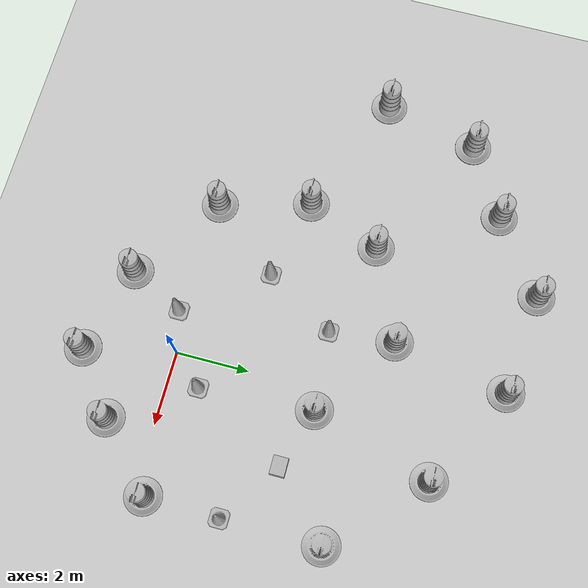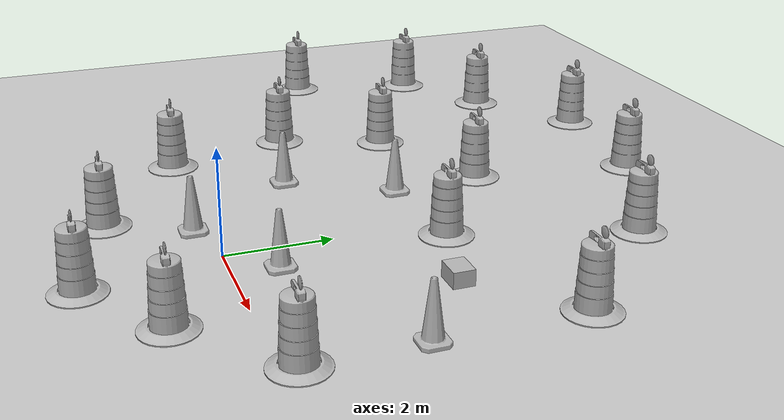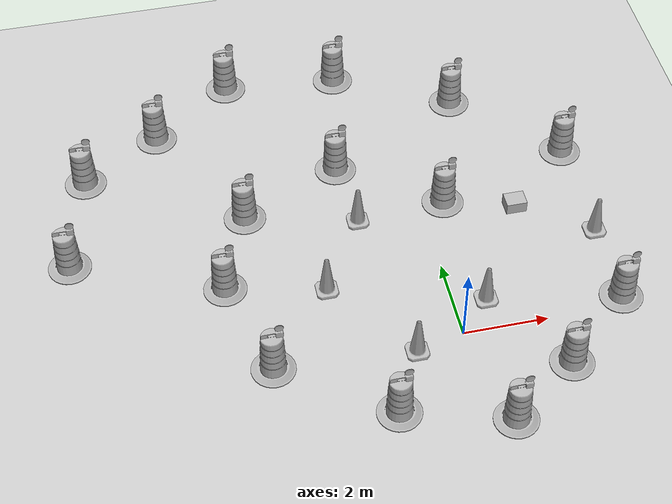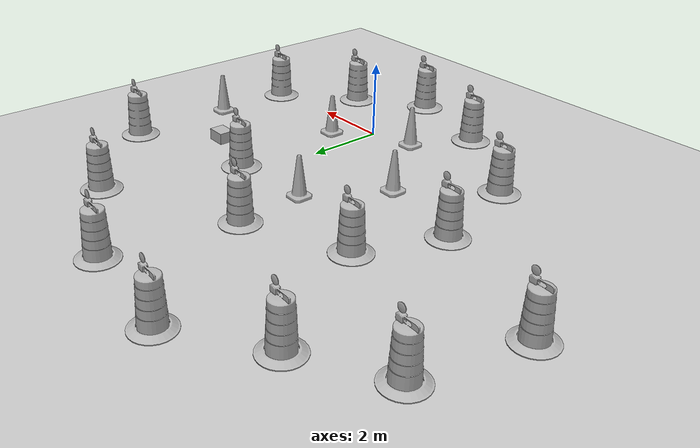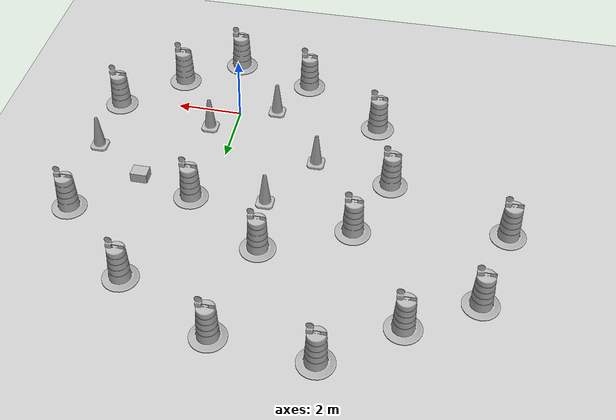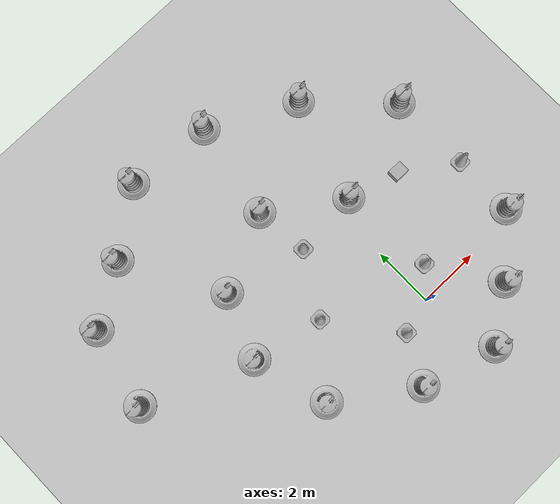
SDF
<sdf version="1.7">
 <world name="default">
  <light name="sun" type="directional">
   <pose>0 0 10 0 -0 0</pose>
   <diffuse>0.8 0.8 0.8 1</diffuse>
   <specular>0.2 0.2 0.2 1</specular>
   <attenuation>
    <range>1000</range>
    <constant>0.9</constant>
    <linear>0.01</linear>
    <quadratic>0.001</quadratic>
   </attenuation>
   <direction>-0.5 0.1 -0.9</direction>
   <spot><inner_angle>0</inner_angle><outer_angle>0</outer_angle><falloff>0</falloff></spot>
  </light>
  <model name="ground_plane">
   <static>1</static>
   <link name="link">
    <collision name="collision">
     <geometry><plane><normal>0 0 1</normal><size>100 100</size></plane></geometry>
     <surface><friction><ode><mu>100</mu><mu2>50</mu2></ode></friction></surface>
    </collision>
    <visual name="visual">
     <cast_shadows>0</cast_shadows>
     <geometry><plane><normal>0 0 1</normal><size>100 100</size></plane></geometry>
     <material>
      <script><uri>file://media/materials/scripts/gazebo.material</uri><name>Gazebo/Grey</name></script>
     </material>
    </visual>
   </link>
  </model>
  <gravity>0 0 -9.8</gravity>
  <magnetic_field>6e-06 2.3e-05 -4.2e-05</magnetic_field>
  <atmosphere type="adiabatic"/>
  <physics type="ode">
   <max_step_size>0.001</max_step_size>
   <real_time_factor>1</real_time_factor>
   <real_time_update_rate>1000</real_time_update_rate>
  </physics>
  <scene><ambient>0.4 0.4 0.4 1</ambient><background>0.7 0.7 0.7 1</background><shadows>1</shadows></scene>
  <spherical_coordinates>
   <surface_model>EARTH_WGS84</surface_model>
   <latitude_deg>0</latitude_deg>
   <longitude_deg>0</longitude_deg>
   <elevation>0</elevation>
   <heading_deg>0</heading_deg>
  </spherical_coordinates>
  <model name="Construction Cone">
   <link name="link">
    <collision name="collision">
     <geometry>
      <mesh><scale>10 10 10</scale><uri>model://construction_cone/meshes/construction_cone.dae</uri></mesh>
     </geometry>
    </collision>
    <visual name="visual">
     <geometry>
      <mesh><scale>10 10 10</scale><uri>model://construction_cone/meshes/construction_cone.dae</uri></mesh>
     </geometry>
    </visual>
    <inertial>
     <inertia><ixx>1</ixx><ixy>0</ixy><ixz>0</ixz><iyy>1</iyy><iyz>0</iyz><izz>1</izz></inertia>
     <mass>1</mass>
    </inertial>
   </link>
   <pose>0.765107 0.83361 -0 0 -1e-06 0</pose>
  </model>
  <model name="Construction Barrel">
   <link name="link">
    <inertial>
     <pose>0 0 0.4 0 -0 0</pose>
     <mass>500</mass>
     <inertia><ixx>51.2096</ixx><iyy>51.2096</iyy><izz>25</izz><ixy>0</ixy><ixz>0</ixz><iyz>0</iyz></inertia>
    </inertial>
    <collision name="collision">
     <geometry><mesh><uri>model://construction_barrel/meshes/construction_barrel.dae</uri></mesh></geometry>
    </collision>
    <visual name="visual">
     <geometry><mesh><uri>model://construction_barrel/meshes/construction_barrel.dae</uri></mesh></geometry>
    </visual>
   </link>
   <pose>0.550289 3.95938 0 0 0 -2.9e-05</pose>
  </model>
  <model name="cardboard_box">
   <pose>2.21908 3.45882 0.149 0 -0 0</pose>
   <link name="link">
    <inertial>
     <mass>2</mass>
     <inertia>
      <ixx>0.0416667</ixx>
      <ixy>0</ixy>
      <ixz>0</ixz>
      <iyy>0.0566667</iyy>
      <iyz>0</iyz>
      <izz>0.0683333</izz>
     </inertia>
    </inertial>
    <collision name="collision">
     <geometry><box><size>0.5 0.4 0.3</size></box></geometry>
     <surface>
      <friction><ode><mu>1</mu><mu2>1</mu2></ode></friction>
      <contact><ode><kp>1e+07</kp><kd>1</kd><min_depth>0.001</min_depth><max_vel>0.1</max_vel></ode></contact>
     </surface>
    </collision>
    <visual name="visual">
     <pose>0 0 -0.15 0 -0 0</pose>
     <geometry>
      <mesh><uri>model://cardboard_box/meshes/cardboard_box.dae</uri><scale>1.25932 1.00745 0.755591</scale></mesh>
     </geometry>
    </visual>
   </link>
  </model>
  <model name="Construction Barrel_0">
   <link name="link">
    <inertial>
     <pose>0 0 0.4 0 -0 0</pose>
     <mass>500</mass>
     <inertia><ixx>51.2096</ixx><iyy>51.2096</iyy><izz>25</izz><ixy>0</ixy><ixz>0</ixz><iyz>0</iyz></inertia>
    </inertial>
    <collision name="collision">
     <geometry><mesh><uri>model://construction_barrel/meshes/construction_barrel.dae</uri></mesh></geometry>
    </collision>
    <visual name="visual">
     <geometry><mesh><uri>model://construction_barrel/meshes/construction_barrel.dae</uri></mesh></geometry>
    </visual>
   </link>
   <pose>3.83905 0.273624 -1e-06 -8e-06 -2e-06 -3.2e-05</pose>
  </model>
  <model name="Construction Barrel_1">
   <link name="link">
    <inertial>
     <pose>0 0 0.4 0 -0 0</pose>
     <mass>500</mass>
     <inertia><ixx>51.2096</ixx><iyy>51.2096</iyy><izz>25</izz><ixy>0</ixy><ixz>0</ixz><iyz>0</iyz></inertia>
    </inertial>
    <collision name="collision">
     <geometry><mesh><uri>model://construction_barrel/meshes/construction_barrel.dae</uri></mesh></geometry>
    </collision>
    <visual name="visual">
     <geometry><mesh><uri>model://construction_barrel/meshes/construction_barrel.dae</uri></mesh></geometry>
    </visual>
   </link>
   <pose>2.15125 -1.28623 -1e-06 3e-06 -0 -2.7e-05</pose>
  </model>
  <model name="Construction Barrel_2">
   <link name="link">
    <inertial>
     <pose>0 0 0.4 0 -0 0</pose>
     <mass>500</mass>
     <inertia><ixx>51.2096</ixx><iyy>51.2096</iyy><izz>25</izz><ixy>0</ixy><ixz>0</ixz><iyz>0</iyz></inertia>
    </inertial>
    <collision name="collision">
     <geometry><mesh><uri>model://construction_barrel/meshes/construction_barrel.dae</uri></mesh></geometry>
    </collision>
    <visual name="visual">
     <geometry><mesh><uri>model://construction_barrel/meshes/construction_barrel.dae</uri></mesh></geometry>
    </visual>
   </link>
   <pose>3.86596 5.02182 0 0 0 -2.9e-05</pose>
  </model>
  <model name="Construction Cone_0">
   <link name="link">
    <collision name="collision">
     <geometry>
      <mesh><scale>10 10 10</scale><uri>model://construction_cone/meshes/construction_cone.dae</uri></mesh>
     </geometry>
    </collision>
    <visual name="visual">
     <geometry>
      <mesh><scale>10 10 10</scale><uri>model://construction_cone/meshes/construction_cone.dae</uri></mesh>
     </geometry>
    </visual>
    <inertial>
     <inertia><ixx>1</ixx><ixy>0</ixy><ixz>0</ixz><iyy>1</iyy><iyz>0</iyz><izz>1</izz></inertia>
     <mass>1</mass>
    </inertial>
   </link>
   <pose>-1.60948 3.78463 -5e-06 -1e-06 -0 -0</pose>
  </model>
  <model name="Construction Cone_1">
   <link name="link">
    <collision name="collision">
     <geometry>
      <mesh><scale>10 10 10</scale><uri>model://construction_cone/meshes/construction_cone.dae</uri></mesh>
     </geometry>
    </collision>
    <visual name="visual">
     <geometry>
      <mesh><scale>10 10 10</scale><uri>model://construction_cone/meshes/construction_cone.dae</uri></mesh>
     </geometry>
    </visual>
    <inertial>
     <inertia><ixx>1</ixx><ixy>0</ixy><ixz>0</ixz><iyy>1</iyy><iyz>0</iyz><izz>1</izz></inertia>
     <mass>1</mass>
    </inertial>
   </link>
   <pose>-2.76308 1.8543 -0 0 -1e-06 0</pose>
  </model>
  <model name="Construction Cone_2">
   <link name="link">
    <collision name="collision">
     <geometry>
      <mesh><scale>10 10 10</scale><uri>model://construction_cone/meshes/construction_cone.dae</uri></mesh>
     </geometry>
    </collision>
    <visual name="visual">
     <geometry>
      <mesh><scale>10 10 10</scale><uri>model://construction_cone/meshes/construction_cone.dae</uri></mesh>
     </geometry>
    </visual>
    <inertial>
     <inertia><ixx>1</ixx><ixy>0</ixy><ixz>0</ixz><iyy>1</iyy><iyz>0</iyz><izz>1</izz></inertia>
     <mass>1</mass>
    </inertial>
   </link>
   <pose>-1.14112 -0.282463 -0 -0 -0 -0</pose>
  </model>
  <model name="Construction Cone_3">
   <link name="link">
    <collision name="collision">
     <geometry>
      <mesh><scale>10 10 10</scale><uri>model://construction_cone/meshes/construction_cone.dae</uri></mesh>
     </geometry>
    </collision>
    <visual name="visual">
     <geometry>
      <mesh><scale>10 10 10</scale><uri>model://construction_cone/meshes/construction_cone.dae</uri></mesh>
     </geometry>
    </visual>
    <inertial>
     <inertia><ixx>1</ixx><ixy>0</ixy><ixz>0</ixz><iyy>1</iyy><iyz>0</iyz><izz>1</izz></inertia>
     <mass>1</mass>
    </inertial>
   </link>
   <pose>3.87271 2.32095 -0 0 -1e-06 0</pose>
  </model>
  <model name="Construction Barrel_clone">
   <link name="link">
    <inertial>
     <pose>0 0 0.4 0 -0 0</pose>
     <mass>500</mass>
     <inertia><ixx>51.2096</ixx><iyy>51.2096</iyy><izz>25</izz><ixy>0</ixy><ixz>0</ixz><iyz>0</iyz></inertia>
    </inertial>
    <collision name="collision">
     <geometry><mesh><uri>model://construction_barrel/meshes/construction_barrel.dae</uri></mesh></geometry>
    </collision>
    <visual name="visual">
     <geometry><mesh><uri>model://construction_barrel/meshes/construction_barrel.dae</uri></mesh></geometry>
    </visual>
   </link>
   <pose>-1.7833 5.56738 -2e-06 -7e-06 -4e-06 -2.9e-05</pose>
  </model>
  <model name="Construction Barrel_clone_0">
   <link name="link">
    <inertial>
     <pose>0 0 0.4 0 -0 0</pose>
     <mass>500</mass>
     <inertia><ixx>51.2096</ixx><iyy>51.2096</iyy><izz>25</izz><ixy>0</ixy><ixz>0</ixz><iyz>0</iyz></inertia>
    </inertial>
    <collision name="collision">
     <geometry><mesh><uri>model://construction_barrel/meshes/construction_barrel.dae</uri></mesh></geometry>
    </collision>
    <visual name="visual">
     <geometry><mesh><uri>model://construction_barrel/meshes/construction_barrel.dae</uri></mesh></geometry>
    </visual>
   </link>
   <pose>-4.25237 4.44217 -2e-06 7e-06 -4e-06 -2.8e-05</pose>
  </model>
  <model name="Construction Barrel_clone_1">
   <link name="link">
    <inertial>
     <pose>0 0 0.4 0 -0 0</pose>
     <mass>500</mass>
     <inertia><ixx>51.2096</ixx><iyy>51.2096</iyy><izz>25</izz><ixy>0</ixy><ixz>0</ixz><iyz>0</iyz></inertia>
    </inertial>
    <collision name="collision">
     <geometry><mesh><uri>model://construction_barrel/meshes/construction_barrel.dae</uri></mesh></geometry>
    </collision>
    <visual name="visual">
     <geometry><mesh><uri>model://construction_barrel/meshes/construction_barrel.dae</uri></mesh></geometry>
    </visual>
   </link>
   <pose>-5.05855 2.37875 -2e-06 -7e-06 -4e-06 -2.9e-05</pose>
  </model>
  <model name="Construction Barrel_clone_2">
   <link name="link">
    <inertial>
     <pose>0 0 0.4 0 -0 0</pose>
     <mass>500</mass>
     <inertia><ixx>51.2096</ixx><iyy>51.2096</iyy><izz>25</izz><ixy>0</ixy><ixz>0</ixz><iyz>0</iyz></inertia>
    </inertial>
    <collision name="collision">
     <geometry><mesh><uri>model://construction_barrel/meshes/construction_barrel.dae</uri></mesh></geometry>
    </collision>
    <visual name="visual">
     <geometry><mesh><uri>model://construction_barrel/meshes/construction_barrel.dae</uri></mesh></geometry>
    </visual>
   </link>
   <pose>-4.37058 -0.078703 -4e-06 -5e-06 -7e-06 -2.8e-05</pose>
  </model>
  <model name="Construction Barrel_clone_3">
   <link name="link">
    <inertial>
     <pose>0 0 0.4 0 -0 0</pose>
     <mass>500</mass>
     <inertia><ixx>51.2096</ixx><iyy>51.2096</iyy><izz>25</izz><ixy>0</ixy><ixz>0</ixz><iyz>0</iyz></inertia>
    </inertial>
    <collision name="collision">
     <geometry><mesh><uri>model://construction_barrel/meshes/construction_barrel.dae</uri></mesh></geometry>
    </collision>
    <visual name="visual">
     <geometry><mesh><uri>model://construction_barrel/meshes/construction_barrel.dae</uri></mesh></geometry>
    </visual>
   </link>
   <pose>-1.91142 -1.77664 -1e-06 -8e-06 -2e-06 -3e-05</pose>
  </model>
  <model name="Construction Barrel_clone_4">
   <link name="link">
    <inertial>
     <pose>0 0 0.4 0 -0 0</pose>
     <mass>500</mass>
     <inertia><ixx>51.2096</ixx><iyy>51.2096</iyy><izz>25</izz><ixy>0</ixy><ixz>0</ixz><iyz>0</iyz></inertia>
    </inertial>
    <collision name="collision">
     <geometry><mesh><uri>model://construction_barrel/meshes/construction_barrel.dae</uri></mesh></geometry>
    </collision>
    <visual name="visual">
     <geometry><mesh><uri>model://construction_barrel/meshes/construction_barrel.dae</uri></mesh></geometry>
    </visual>
   </link>
   <pose>0.510392 -2.47069 -4e-06 -5e-06 -7e-06 -2.6e-05</pose>
  </model>
  <model name="Construction Barrel_clone_5">
   <link name="link">
    <inertial>
     <pose>0 0 0.4 0 -0 0</pose>
     <mass>500</mass>
     <inertia><ixx>51.2096</ixx><iyy>51.2096</iyy><izz>25</izz><ixy>0</ixy><ixz>0</ixz><iyz>0</iyz></inertia>
    </inertial>
    <collision name="collision">
     <geometry><mesh><uri>model://construction_barrel/meshes/construction_barrel.dae</uri></mesh></geometry>
    </collision>
    <visual name="visual">
     <geometry><mesh><uri>model://construction_barrel/meshes/construction_barrel.dae</uri></mesh></geometry>
    </visual>
   </link>
   <pose>1.58709 7.29369 0 0 0 -2.6e-05</pose>
  </model>
  <model name="Construction Barrel_clone_6">
   <link name="link">
    <inertial>
     <pose>0 0 0.4 0 -0 0</pose>
     <mass>500</mass>
     <inertia><ixx>51.2096</ixx><iyy>51.2096</iyy><izz>25</izz><ixy>0</ixy><ixz>0</ixz><iyz>0</iyz></inertia>
    </inertial>
    <collision name="collision">
     <geometry><mesh><uri>model://construction_barrel/meshes/construction_barrel.dae</uri></mesh></geometry>
    </collision>
    <visual name="visual">
     <geometry><mesh><uri>model://construction_barrel/meshes/construction_barrel.dae</uri></mesh></geometry>
    </visual>
   </link>
   <pose>-1.19508 8.73805 -1e-06 -8e-06 -2e-06 -2.5e-05</pose>
  </model>
  <model name="Construction Barrel_clone_7">
   <link name="link">
    <inertial>
     <pose>0 0 0.4 0 -0 0</pose>
     <mass>500</mass>
     <inertia><ixx>51.2096</ixx><iyy>51.2096</iyy><izz>25</izz><ixy>0</ixy><ixz>0</ixz><iyz>0</iyz></inertia>
    </inertial>
    <collision name="collision">
     <geometry><mesh><uri>model://construction_barrel/meshes/construction_barrel.dae</uri></mesh></geometry>
    </collision>
    <visual name="visual">
     <geometry><mesh><uri>model://construction_barrel/meshes/construction_barrel.dae</uri></mesh></geometry>
    </visual>
   </link>
   <pose>-4.00004 8.99999 -1e-06 1e-06 4e-06 -2.5e-05</pose>
  </model>
  <model name="Construction Barrel_clone_8">
   <link name="link">
    <inertial>
     <pose>0 0 0.4 0 -0 0</pose>
     <mass>500</mass>
     <inertia><ixx>51.2096</ixx><iyy>51.2096</iyy><izz>25</izz><ixy>0</ixy><ixz>0</ixz><iyz>0</iyz></inertia>
    </inertial>
    <collision name="collision">
     <geometry><mesh><uri>model://construction_barrel/meshes/construction_barrel.dae</uri></mesh></geometry>
    </collision>
    <visual name="visual">
     <geometry><mesh><uri>model://construction_barrel/meshes/construction_barrel.dae</uri></mesh></geometry>
    </visual>
   </link>
   <pose>-6.00003 7.54462 -2e-06 -7e-06 -4e-06 -2.4e-05</pose>
  </model>
  <model name="Construction Barrel_clone_9">
   <link name="link">
    <inertial>
     <pose>0 0 0.4 0 -0 0</pose>
     <mass>500</mass>
     <inertia><ixx>51.2096</ixx><iyy>51.2096</iyy><izz>25</izz><ixy>0</ixy><ixz>0</ixz><iyz>0</iyz></inertia>
    </inertial>
    <collision name="collision">
     <geometry><mesh><uri>model://construction_barrel/meshes/construction_barrel.dae</uri></mesh></geometry>
    </collision>
    <visual name="visual">
     <geometry><mesh><uri>model://construction_barrel/meshes/construction_barrel.dae</uri></mesh></geometry>
    </visual>
   </link>
   <pose>-7.89847 6.38426 -1e-06 -5e-06 -0 -2.2e-05</pose>
  </model>
  <model name="Construction Barrel_clone_10">
   <link name="link">
    <inertial>
     <pose>0 0 0.4 0 -0 0</pose>
     <mass>500</mass>
     <inertia><ixx>51.2096</ixx><iyy>51.2096</iyy><izz>25</izz><ixy>0</ixy><ixz>0</ixz><iyz>0</iyz></inertia>
    </inertial>
    <collision name="collision">
     <geometry><mesh><uri>model://construction_barrel/meshes/construction_barrel.dae</uri></mesh></geometry>
    </collision>
    <visual name="visual">
     <geometry><mesh><uri>model://construction_barrel/meshes/construction_barrel.dae</uri></mesh></geometry>
    </visual>
   </link>
   <pose>-8.51785 3.77942 -3e-06 -6e-06 -5e-06 -1.9e-05</pose>
  </model>
 </world>
</sdf>
